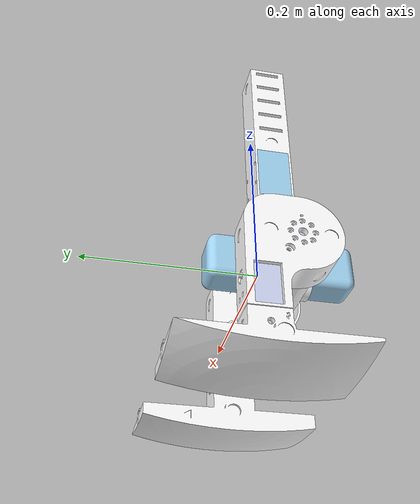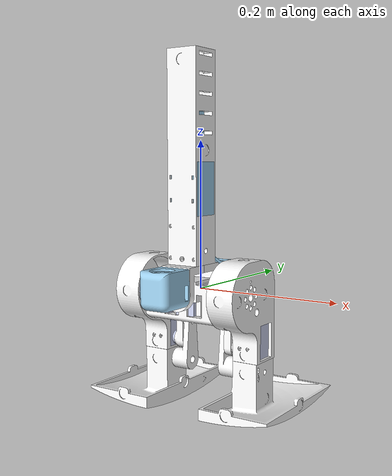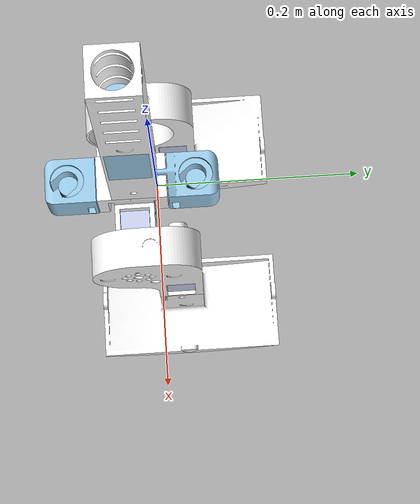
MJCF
<?xml version="1.0" ?>
<!-- Generated using onshape-to-robot -->
<!-- Onshape https://cad.onshape.com/documents/ea5a08a359d3532dfbb48a4e/w/e651412d6195b33fb098b9d5/e/2438896d7b2b7abc45a06a71 -->
<mujoco model="pengu1_20_hw_updated">
  <option timestep="0.001" integrator="implicitfast"/>
  <compiler angle="radian" meshdir="assets" autolimits="true"/>
  <default>
    <default class="pengu1_20_hw_updated">
      <joint frictionloss="0.1" armature="0.005"/>
      <position kp="50" dampratio="1" forcerange="-4.1 4.1"/>
      <default class="visual">
        <geom type="mesh" contype="0" conaffinity="0" group="2"/>
      </default>
      <default class="collision">
        <geom group="3" contype="0" conaffinity="0"/>
      </default>
    </default>
  </default>
  <worldbody>
    <!-- Link leftthighmotor -->
    <body name="leftthighmotor" pos="0 0 0" quat="1 0 0 0" childclass="pengu1_20_hw_updated">
      <freejoint name="leftthighmotor_freejoint"/>
      <inertial pos="-0.0738509 0.0105397 -0.0475118" mass="0.207745" fullinertia="0.000560286 0.000484471 0.000126076 -1.37754e-05 2.42754e-05 6.34348e-05"/>
      <!-- Part easymotor -->
      <geom type="mesh" class="visual" pos="-0.08825 0.03128 -0.0885124" quat="0.707107 -9.61e-10 -9.61e-10 -0.707107" mesh="easymotor" material="easymotor_material"/>
      <geom type="mesh" class="collision" pos="-0.08825 0.03128 -0.0885124" quat="0.707107 -9.61e-10 -9.61e-10 -0.707107" mesh="easymotor" material="easymotor_material"/>
      <!-- Part left_thigh -->
      <geom type="mesh" class="visual" pos="-0.0799204 -0.0680094 -0.0260901" quat="0 -0 0.707107 0.707107" mesh="left_thigh" material="left_thigh_material"/>
      <geom type="mesh" class="collision" pos="-0.0799204 -0.0680094 -0.0260901" quat="0 -0 0.707107 0.707107" mesh="left_thigh" material="left_thigh_material"/>
      <!-- Link easyaxis -->
      <body name="easyaxis" pos="-0.06925 -0.02322 0" quat="0.707107 -9.61e-10 -0.707107 9.61e-10">
        <!-- Joint from leftthighmotor to easyaxis -->
        <joint axis="0 0 1" name="hip-L" type="hinge"/>
        <inertial pos="-0.0102715 0.000501152 -0.06925" mass="0.345637" fullinertia="0.000733205 0.000773915 0.000118176 6.32805e-07 -0 0"/>
        <!-- Part pengu2axis010 -->
        <geom type="mesh" class="visual" pos="0.0165 0.0195 -0.04875" quat="0.5 0.5 0.5 -0.5" mesh="pengu2axis010" material="pengu2axis010_material"/>
        <geom type="mesh" class="collision" pos="0.0165 0.0195 -0.04875" quat="0.5 0.5 0.5 -0.5" mesh="pengu2axis010" material="pengu2axis010_material"/>
        <!-- Part easymotorwithconnector -->
        <geom type="mesh" class="visual" pos="0.011 -0.01425 -0.0965" quat="0.5 -0.5 -0.5 0.5" mesh="easymotorwithconnector" material="easymotorwithconnector_material"/>
        <geom type="mesh" class="collision" pos="0.011 -0.01425 -0.0965" quat="0.5 -0.5 -0.5 0.5" mesh="easymotorwithconnector" material="easymotorwithconnector_material"/>
        <!-- Part easymotorwithconnector_2 -->
        <geom type="mesh" class="visual" pos="0.011 0.01425 -0.042" quat="0.5 0.5 -0.5 -0.5" mesh="easymotorwithconnector" material="easymotorwithconnector_material"/>
        <geom type="mesh" class="collision" pos="0.011 0.01425 -0.042" quat="0.5 0.5 -0.5 -0.5" mesh="easymotorwithconnector" material="easymotorwithconnector_material"/>
        <!-- Part easymotor_2 -->
        <geom type="mesh" class="visual" pos="0.011 -0.01478 -0.0835" quat="0.707107 -9.61e-10 -0.707107 -9.61e-10" mesh="easymotor" material="easymotor_material"/>
        <geom type="mesh" class="collision" pos="0.011 -0.01478 -0.0835" quat="0.707107 -9.61e-10 -0.707107 -9.61e-10" mesh="easymotor" material="easymotor_material"/>
        <!-- Link rightthighmotor -->
        <body name="rightthighmotor" pos="-0 0 -0.144" quat="0 -0.707107 -0.707107 0">
          <!-- Joint from easyaxis to rightthighmotor -->
          <joint axis="0 0 1" name="hip-R" type="hinge"/>
          <inertial pos="0.0336636 -0.0475118 -0.000899096" mass="0.207745" fullinertia="0.000484471 0.00012582 0.00056003 6.30739e-05 1.37137e-05 -2.42754e-05"/>
          <!-- Part easymotor_3 -->
          <geom type="mesh" class="visual" pos="0.02575 -0.0885124 0.0135" quat="0.707107 -0.707107 1.734e-09 -1.734e-09" mesh="easymotor" material="easymotor_material"/>
          <geom type="mesh" class="collision" pos="0.02575 -0.0885124 0.0135" quat="0.707107 -0.707107 1.734e-09 -1.734e-09" mesh="easymotor" material="easymotor_material"/>
          <!-- Part right_thigh -->
          <geom type="mesh" class="visual" pos="-0 0 0.0155" quat="0.707107 1.734e-09 0.707107 -1.734e-09" mesh="right_thigh" material="right_thigh_material"/>
          <geom type="mesh" class="collision" pos="-0 0 0.0155" quat="0.707107 1.734e-09 0.707107 -1.734e-09" mesh="right_thigh" material="right_thigh_material"/>
          <!-- Link right_foot0080 -->
          <body name="right_foot0080" pos="0.04054 -0.0916416 -0.000350003" quat="0.707107 -0.707107 1.734e-09 -1.734e-09">
            <!-- Joint from rightthighmotor to right_foot0080 -->
            <joint axis="0 0 1" name="slider-R" type="slide" range="-0.04987086102009154 0.0001291389799084608"/>
            <inertial pos="0.00309728 -0.00816562 -0.0519937" mass="0.149685" fullinertia="0.000166324 0.000359285 0.000426047 1.24008e-06 2.46733e-06 -8.22166e-06"/>
            <!-- Part right_foot0080 -->
            <geom type="mesh" class="visual" pos="-0.000764396 0.032498 0.0472219" quat="0.5 -0.5 -0.5 -0.5" mesh="right_foot0080" material="right_foot0080_material"/>
            <geom type="mesh" class="collision" pos="-0.000764396 0.032498 0.0472219" quat="0.5 -0.5 -0.5 -0.5" mesh="right_foot0080" material="right_foot0080_material" contype="1" conaffinity="1" friction="0.9 0.005 0.0001"/>
            <!-- Frame closing_crank3-R_2 -->
            <site group="3" name="closing_crank3-R_2" pos="-0.000764396 0.0222 -0.01511" quat="0.707107 0.707107 -0 0"/>
            <!-- Frame closing_crank3-R_2_z -->
            <site group="3" name="closing_crank3-R_2_z" pos="-0.000764396 -0.0778 -0.01511" quat="0.707107 0.707107 -0 0"/>
          </body>
          <!-- Link crank_circle -->
          <body name="crank_circle" pos="0.04 -0.0775124 -0.0245" quat="1 0 -0 -2.453e-09">
            <!-- Joint from rightthighmotor to crank_circle -->
            <joint axis="0 0 1" name="crank2_R" type="hinge"/>
            <inertial pos="8.03408e-05 0.010368 -0.0087438" mass="0.0199581" fullinertia="3.81655e-06 1.45975e-06 4.66294e-06 -1.8264e-08 5.55e-10 7.1615e-08"/>
            <!-- Part crank_circle -->
            <geom type="mesh" class="visual" pos="-0 0 -0.009" quat="0.707101 0.0027396 0.707101 -0.0027396" mesh="crank_circle" material="crank_circle_material"/>
            <geom type="mesh" class="collision" pos="-0 0 -0.009" quat="0.707101 0.0027396 0.707101 -0.0027396" mesh="crank_circle" material="crank_circle_material"/>
            <!-- Link crank_link -->
            <body name="crank_link" pos="0.000193717 0.0249992 -0.009" quat="0.709841 0 -0 0.704362">
              <!-- Joint from crank_circle to crank_link -->
              <joint axis="0 0 1" name="crank1-R" type="hinge"/>
              <inertial pos="-0.0398252 -1.59698e-06 -0.0065882" mass="0.0249476" fullinertia="2.34462e-06 1.14674e-05 1.17005e-05 -3.66e-10 1.45213e-06 5.8e-11"/>
              <!-- Part crank_link -->
              <geom type="mesh" class="visual" pos="0 0 -0.00705" quat="0.50001 0.49999 0.50001 -0.49999" mesh="crank_link" material="crank_link_material"/>
              <geom type="mesh" class="collision" pos="0 0 -0.00705" quat="0.50001 0.49999 0.50001 -0.49999" mesh="crank_link" material="crank_link_material"/>
              <!-- Frame closing_crank3-R_1 -->
              <site group="3" name="closing_crank3-R_1" pos="-0.05424 -2.17501e-06 0.01095" quat="1 0 -0 2.00499e-05"/>
              <!-- Frame closing_crank3-R_1_z -->
              <site group="3" name="closing_crank3-R_1_z" pos="-0.05424 -2.17501e-06 0.11095" quat="1 0 -0 2.00499e-05"/>
            </body>
          </body>
        </body>
        <!-- Link easytorso -->
        <body name="easytorso" pos="6.3e-11 0.02322 -0.06925" quat="0.5 0.5 -0.5 0.5">
          <!-- Joint from easyaxis to easytorso -->
          <joint axis="0 0 1" name="torso" type="hinge"/>
          <inertial pos="5.34929e-05 -0.136231 0.0218853" mass="1.12208" fullinertia="0.00957744 0.00107906 0.0088086 -7.14176e-06 -5.13206e-07 -8.82528e-05"/>
          <!-- Part 10g_holder___15g -->
          <geom type="mesh" class="visual" pos="-0 -0.0322452 0.0865" quat="0 0 0.707107 0.707107" mesh="10g_holder___15g" material="10g_holder___15g_material"/>
          <geom type="mesh" class="collision" pos="-0 -0.0322452 0.0865" quat="0 0 0.707107 0.707107" mesh="10g_holder___15g" material="10g_holder___15g_material"/>
          <!-- Part battery -->
          <geom type="mesh" class="visual" pos="-0.0225 -0.17175 0.0412769" quat="0.5 0.5 0.5 0.5" mesh="battery" material="battery_material"/>
          <geom type="mesh" class="collision" pos="-0.0225 -0.17175 0.0412769" quat="0.5 0.5 0.5 0.5" mesh="battery" material="battery_material"/>
          <!-- Part 100g -->
          <geom type="mesh" class="visual" pos="0.00323436 -0.24475 0.0212769" quat="0 -0 0.707107 0.707107" mesh="100g" material="100g_material"/>
          <geom type="mesh" class="collision" pos="0.00323436 -0.24475 0.0212769" quat="0 -0 0.707107 0.707107" mesh="100g" material="100g_material"/>
          <!-- Part 10g -->
          <geom type="mesh" class="visual" pos="0 -0.01425 -0.0387231" quat="0 -0 -0.707107 -0.707107" mesh="10g" material="10g_material"/>
          <geom type="mesh" class="collision" pos="0 -0.01425 -0.0387231" quat="0 -0 -0.707107 -0.707107" mesh="10g" material="10g_material"/>
          <!-- Part 100g_2 -->
          <geom type="mesh" class="visual" pos="0.00323436 -0.19375 0.0212769" quat="0 -0 0.707107 0.707107" mesh="100g" material="100g_material"/>
          <geom type="mesh" class="collision" pos="0.00323436 -0.19375 0.0212769" quat="0 -0 0.707107 0.707107" mesh="100g" material="100g_material"/>
          <!-- Part 10g_2 -->
          <geom type="mesh" class="visual" pos="0 -0.00625 -0.0387231" quat="0 -0 -0.707107 -0.707107" mesh="10g" material="10g_material"/>
          <geom type="mesh" class="collision" pos="0 -0.00625 -0.0387231" quat="0 -0 -0.707107 -0.707107" mesh="10g" material="10g_material"/>
          <!-- Part 10g_3 -->
          <geom type="mesh" class="visual" pos="0 -0.01025 -0.0387231" quat="0 -0 -0.707107 -0.707107" mesh="10g" material="10g_material"/>
          <geom type="mesh" class="collision" pos="0 -0.01025 -0.0387231" quat="0 -0 -0.707107 -0.707107" mesh="10g" material="10g_material"/>
          <!-- Part 100g_3 -->
          <geom type="mesh" class="visual" pos="0.00323436 -0.22775 0.0212769" quat="0 -0 0.707107 0.707107" mesh="100g" material="100g_material"/>
          <geom type="mesh" class="collision" pos="0.00323436 -0.22775 0.0212769" quat="0 -0 0.707107 0.707107" mesh="100g" material="100g_material"/>
          <!-- Part 10g_holder___15g_2 -->
          <geom type="mesh" class="visual" pos="0 -0.03225 -0.0387231" quat="0 -0 -0.707107 -0.707107" mesh="10g_holder___15g" material="10g_holder___15g_material"/>
          <geom type="mesh" class="collision" pos="0 -0.03225 -0.0387231" quat="0 -0 -0.707107 -0.707107" mesh="10g_holder___15g" material="10g_holder___15g_material"/>
          <!-- Part holder_front -->
          <geom type="mesh" class="visual" pos="-0.0225 -0.03525 -0.0162231" quat="0.5 0.5 0.5 -0.5" mesh="holder_front" material="holder_front_material"/>
          <geom type="mesh" class="collision" pos="-0.0225 -0.03525 -0.0162231" quat="0.5 0.5 0.5 -0.5" mesh="holder_front" material="holder_front_material"/>
          <!-- Part 10g_4 -->
          <geom type="mesh" class="visual" pos="-0 -0.0142452 0.0865" quat="0 0 0.707107 0.707107" mesh="10g" material="10g_material"/>
          <geom type="mesh" class="collision" pos="-0 -0.0142452 0.0865" quat="0 0 0.707107 0.707107" mesh="10g" material="10g_material"/>
          <!-- Part battery_2 -->
          <geom type="mesh" class="visual" pos="0.0225 -0.10175 0.0412769" quat="0.5 0.5 -0.5 -0.5" mesh="battery" material="battery_material"/>
          <geom type="mesh" class="collision" pos="0.0225 -0.10175 0.0412769" quat="0.5 0.5 -0.5 -0.5" mesh="battery" material="battery_material"/>
          <!-- Part torso -->
          <geom type="mesh" class="visual" pos="-0.0225 -0.31675 -0.00122307" quat="0.707107 -0.707107 0 -0" mesh="torso" material="torso_material"/>
          <geom type="mesh" class="collision" pos="-0.0225 -0.31675 -0.00122307" quat="0.707107 -0.707107 0 -0" mesh="torso" material="torso_material"/>
          <!-- Part 10g_5 -->
          <geom type="mesh" class="visual" pos="-0 -0.00624522 0.0865" quat="0 0 0.707107 0.707107" mesh="10g" material="10g_material"/>
          <geom type="mesh" class="collision" pos="-0 -0.00624522 0.0865" quat="0 0 0.707107 0.707107" mesh="10g" material="10g_material"/>
          <!-- Part 100g_4 -->
          <geom type="mesh" class="visual" pos="0.00323436 -0.21075 0.0212769" quat="0 -0 0.707107 0.707107" mesh="100g" material="100g_material"/>
          <geom type="mesh" class="collision" pos="0.00323436 -0.21075 0.0212769" quat="0 -0 0.707107 0.707107" mesh="100g" material="100g_material"/>
          <!-- Part 10g_6 -->
          <geom type="mesh" class="visual" pos="0 -0.01825 -0.0387231" quat="0 -0 -0.707107 -0.707107" mesh="10g" material="10g_material"/>
          <geom type="mesh" class="collision" pos="0 -0.01825 -0.0387231" quat="0 -0 -0.707107 -0.707107" mesh="10g" material="10g_material"/>
          <!-- Part 10g_7 -->
          <geom type="mesh" class="visual" pos="-0 -0.0102452 0.0865" quat="0 0 0.707107 0.707107" mesh="10g" material="10g_material"/>
          <geom type="mesh" class="collision" pos="-0 -0.0102452 0.0865" quat="0 0 0.707107 0.707107" mesh="10g" material="10g_material"/>
          <!-- Part 10g_8 -->
          <geom type="mesh" class="visual" pos="-0 -0.0182452 0.0865" quat="0 0 0.707107 0.707107" mesh="10g" material="10g_material"/>
          <geom type="mesh" class="collision" pos="-0 -0.0182452 0.0865" quat="0 0 0.707107 0.707107" mesh="10g" material="10g_material"/>
          <!-- Part holder_back -->
          <geom type="mesh" class="visual" pos="0.0225 -0.0352452 0.064" quat="0.5 0.5 -0.5 0.5" mesh="holder_back" material="holder_back_material"/>
          <geom type="mesh" class="collision" pos="0.0225 -0.0352452 0.064" quat="0.5 0.5 -0.5 0.5" mesh="holder_back" material="holder_back_material"/>
          <!-- Part bracketmotorside -->
          <geom type="mesh" class="visual" pos="0.0225 -0.02675 -0.01" quat="0 -0 -0.707107 0.707107" mesh="bracketmotorside" material="bracketmotorside_material"/>
          <geom type="mesh" class="collision" pos="0.0225 -0.02675 -0.01" quat="0 -0 -0.707107 0.707107" mesh="bracketmotorside" material="bracketmotorside_material"/>
          <!-- Part bracketbearingside -->
          <geom type="mesh" class="visual" pos="0.0225 -0.0267252 -0.01" quat="0 -0 -0.707107 0.707107" mesh="bracketbearingside" material="bracketbearingside_material"/>
          <geom type="mesh" class="collision" pos="0.0225 -0.0267252 -0.01" quat="0 -0 -0.707107 0.707107" mesh="bracketbearingside" material="bracketbearingside_material"/>
        </body>
      </body>
      <!-- Link right_foot0080___fillet13 -->
      <body name="right_foot0080___fillet13" pos="-0.0744673 0.01678 -0.0915124" quat="0 0 -1.359e-09 -1">
        <!-- Joint from leftthighmotor to right_foot0080___fillet13 -->
        <joint axis="0 0 1" name="slider-L" type="slide" range="-0.04987212393517104 0.00012787606482896063"/>
        <inertial pos="0.00809087 -0.00363118 -0.0521227" mass="0.149685" fullinertia="0.000359248 0.000166321 0.000426014 1.24152e-06 8.21368e-06 -2.46625e-06"/>
        <!-- Part right_foot0080___fillet13 -->
        <geom type="mesh" class="visual" pos="-0.04257 0.00023 0.047094" quat="0 -0.707107 -0 -0.707107" mesh="right_foot0080___fillet13" material="right_foot0080___fillet13_material"/>
        <geom type="mesh" class="collision" pos="-0.04257 0.00023 0.047094" quat="0 -0.707107 -0 -0.707107" mesh="right_foot0080___fillet13" material="right_foot0080___fillet13_material" contype="1" conaffinity="1" friction="0.9 0.005 0.0001"/>
        <!-- Frame closing_crank3-L_2 -->
        <site group="3" name="closing_crank3-L_2" pos="-0.0222673 0.00023 -0.0152379" quat="0 -0.707107 0 -0.707107"/>
        <!-- Frame closing_crank3-L_2_z -->
        <site group="3" name="closing_crank3-L_2_z" pos="0.0777327 0.00023 -0.0152379" quat="0 -0.707107 0 -0.707107"/>
      </body>
      <!-- Link crank_circle_2 -->
      <body name="crank_circle_2" pos="-0.05025 0.01703 -0.0775124" quat="0.707107 -3.22e-09 -0.707107 3.22e-09">
        <!-- Joint from leftthighmotor to crank_circle_2 -->
        <joint axis="0 0 1" name="crank1-L" type="hinge"/>
        <inertial pos="0.0103683 -0 -0.0087438" mass="0.0199581" fullinertia="1.45961e-06 3.81669e-06 4.66294e-06 0 7.1617e-08 -0"/>
        <!-- Part crank_circle_2 -->
        <geom type="mesh" class="visual" pos="0 -0 -0.009" quat="0.5 0.5 0.5 -0.5" mesh="crank_circle" material="crank_circle_material"/>
        <geom type="mesh" class="collision" pos="0 -0 -0.009" quat="0.5 0.5 0.5 -0.5" mesh="crank_circle" material="crank_circle_material"/>
        <!-- Link crank_link_2 -->
        <body name="crank_link_2" pos="0.025 0 -0.009" quat="1 -0 0 -0">
          <!-- Joint from crank_circle_2 to crank_link_2 -->
          <joint axis="0 0 1" name="crank2-L" type="hinge"/>
          <inertial pos="-0.0398237 -0.000352435 -0.0065882" mass="0.0249476" fullinertia="2.34533e-06 1.14667e-05 1.17005e-05 -8.073e-08 1.45208e-06 1.2851e-08"/>
          <!-- Part crank_link_2 -->
          <geom type="mesh" class="visual" pos="-0 0 -0.00705" quat="0.502208 0.497783 0.502208 -0.497783" mesh="crank_link" material="crank_link_material"/>
          <geom type="mesh" class="collision" pos="-0 0 -0.00705" quat="0.502208 0.497783 0.502208 -0.497783" mesh="crank_link" material="crank_link_material"/>
          <!-- Frame closing_crank3-L_1 -->
          <site group="3" name="closing_crank3-L_1" pos="-0.0542379 -0.00048 0.01095" quat="0.99999 0 0 0.00442482"/>
          <!-- Frame closing_crank3-L_1_z -->
          <site group="3" name="closing_crank3-L_1_z" pos="-0.0542379 -0.00048 0.11095" quat="0.99999 0 0 0.00442482"/>
        </body>
      </body>
    </body>
  </worldbody>
  <asset>
    <mesh file="100g.stl"/>
    <mesh file="left_thigh.stl"/>
    <mesh file="crank_circle.stl"/>
    <mesh file="bracketbearingside.stl"/>
    <mesh file="10g_holder___15g.stl"/>
    <mesh file="crank_link.stl"/>
    <mesh file="holder_front.stl"/>
    <mesh file="10g.stl"/>
    <mesh file="holder_back.stl"/>
    <mesh file="bracketmotorside.stl"/>
    <mesh file="torso.stl"/>
    <mesh file="battery.stl"/>
    <mesh file="right_foot0080___fillet13.stl"/>
    <mesh file="easymotor.stl"/>
    <mesh file="right_foot0080.stl"/>
    <mesh file="pengu2axis010.stl"/>
    <mesh file="right_thigh.stl"/>
    <mesh file="easymotorwithconnector.stl"/>
    <material name="easymotor_material" rgba="0.796078 0.823529 0.937255 1"/>
    <material name="left_thigh_material" rgba="1 1 1 1"/>
    <material name="pengu2axis010_material" rgba="1 1 1 1"/>
    <material name="easymotorwithconnector_material" rgba="0.796078 0.823529 0.937255 1"/>
    <material name="right_thigh_material" rgba="1 1 1 1"/>
    <material name="right_foot0080_material" rgba="1 1 1 1"/>
    <material name="crank_circle_material" rgba="1 1 1 1"/>
    <material name="crank_link_material" rgba="1 1 1 1"/>
    <material name="10g_holder___15g_material" rgba="0.615686 0.811765 0.929412 1"/>
    <material name="battery_material" rgba="0.615686 0.811765 0.929412 1"/>
    <material name="100g_material" rgba="0.615686 0.811765 0.929412 1"/>
    <material name="10g_material" rgba="0.615686 0.811765 0.929412 1"/>
    <material name="holder_front_material" rgba="0.615686 0.811765 0.929412 1"/>
    <material name="torso_material" rgba="1 1 1 1"/>
    <material name="holder_back_material" rgba="0.615686 0.811765 0.929412 1"/>
    <material name="bracketmotorside_material" rgba="1 1 1 1"/>
    <material name="bracketbearingside_material" rgba="1 1 1 1"/>
    <material name="right_foot0080___fillet13_material" rgba="1 1 1 1"/>
  </asset>
  <actuator>
    <!-- Driven set = V2 convention (see models/pengu1_31): 5 actuators, crank-slider
         loop members passive via the connect equalities. Right disk = crank2_R. -->
    <position class="pengu1_20_hw_updated" name="hip-L" joint="hip-L" ctrlrange="-1.5708 1.5708"/>
    <position class="pengu1_20_hw_updated" name="hip-R" joint="hip-R" ctrlrange="-1.5708 1.5708"/>
    <position class="pengu1_20_hw_updated" name="crank1-R" joint="crank2_R" ctrlrange="-3.14 3.14"/>
    <position class="pengu1_20_hw_updated" name="crank1-L" joint="crank1-L" ctrlrange="-3.14 3.14"/>
    <position class="pengu1_20_hw_updated" name="torso" joint="torso" ctrlrange="-0.7854 0.7854"/>
  </actuator>
  <equality>
    <connect site1="closing_crank3-L_1" site2="closing_crank3-L_2"/>
    <connect site1="closing_crank3-L_1_z" site2="closing_crank3-L_2_z"/>
    <connect site1="closing_crank3-R_1" site2="closing_crank3-R_2"/>
    <connect site1="closing_crank3-R_1_z" site2="closing_crank3-R_2_z"/>
  </equality>
</mujoco>
